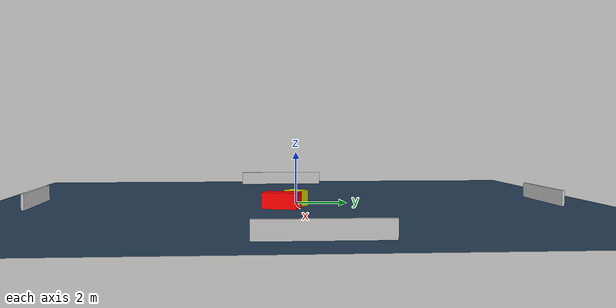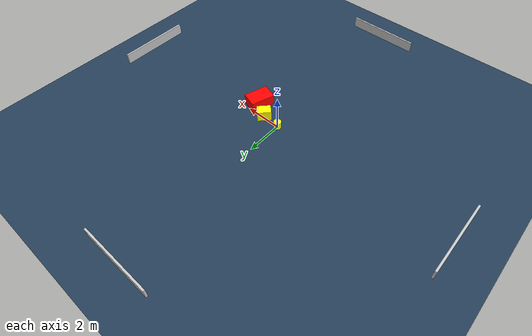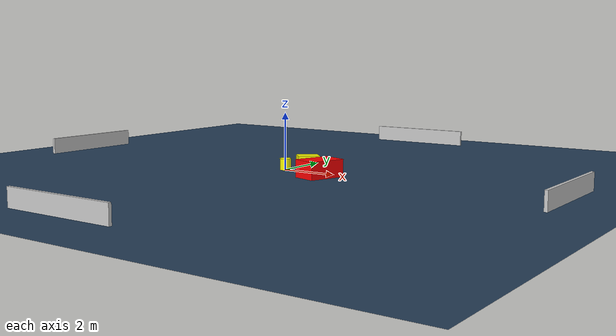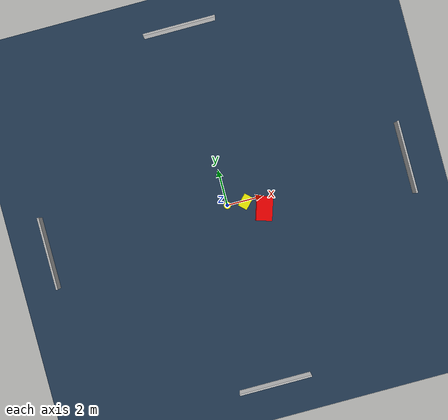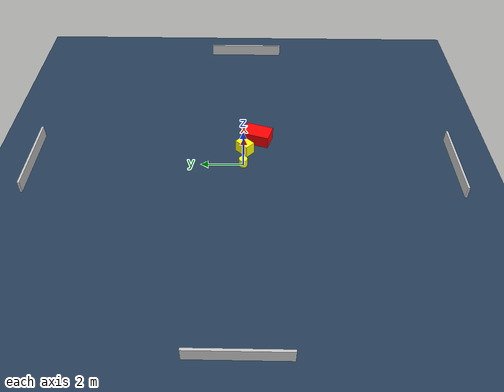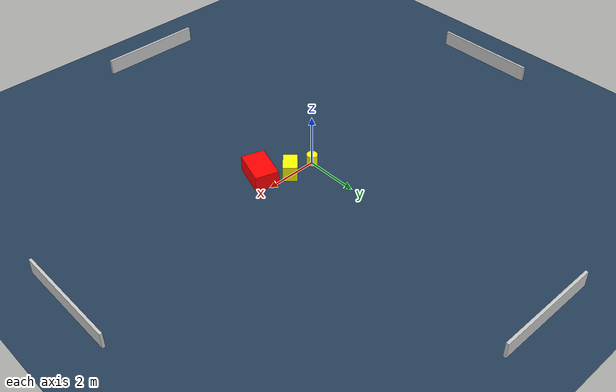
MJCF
<?xml version="1.0" ?>
<mujoco model="generated_environment">
  <option timestep="0.01" integrator="RK4" cone="elliptic"/>
  <default>
    <geom density="1"/>
  </default>
  <asset>
    <texture builtin="gradient" height="3072" name="skybox" rgb1="0.3 0.5 0.7" rgb2="0 0 0" type="skybox" width="512"/>
    <texture builtin="checker" height="300" name="groundplane" rgb1="0.2 0.3 0.4" rgb2="0.1 0.2 0.3" type="2d" width="300"/>
    <material name="groundplane" reflectance="0.2" texrepeat="5 5" texture="groundplane"/>
  </asset>
  <worldbody>
    <light dir="0 0 -1" directional="true" pos="0 0 1.5"/>
    <geom condim="3" friction="0.5 0.005 0.001" material="groundplane" name="floor" pos="0 0 0" size="0 0 0.05" type="plane"/>
    <body name="walls">
      <geom name="wall_1" condim="4" pos="-10.0 0.0 0.3" rgba="0.800000011920929 0.800000011920929 0.800000011920929 1.0" size="0.05 2.0 0.3" type="box"/>
      <geom name="wall_2" condim="4" pos="10.0 0.0 0.3" rgba="0.800000011920929 0.800000011920929 0.800000011920929 1.0" size="0.05 2.0 0.3" type="box"/>
      <geom name="wall_3" condim="4" pos="0.0 -10.0 0.3" rgba="0.800000011920929 0.800000011920929 0.800000011920929 1.0" size="2.0 0.05 0.3" type="box"/>
      <geom name="wall_4" condim="4" pos="0.0 10.0 0.3" rgba="0.800000011920929 0.800000011920929 0.800000011920929 1.0" size="2.0 0.05 0.3" type="box"/>
    </body>
    <body name="robot">
      <joint name="joint_x" type="slide" pos="0 0 0" axis="1 0 0"/>
      <joint name="joint_y" type="slide" pos="0 0 0" axis="0 1 0"/>
      <geom name="robot" type="cylinder" pos="0.0 0.0 0.2" size="0.2 0.2 0.0" mass="5.0" friction="1.0 0.005 0.0001" condim="4" rgba="1.0 1.0 0.0 1.0"/>
    </body>
    <body name="obstacle_1_movable">
      <geom name="obstacle_1_movable" condim="4" pos="0.9976578184305597 -0.06154817833683779 0.3" euler="0 0 136.26252116959984" friction="0.0 0.005 0.001" rgba="1.0 1.0 0.0 1.0" size="0.25942043158870726 0.370329677572028 0.3" type="box" mass="0.1"/>
      <joint type="free"/>
    </body>
    <body name="obstacle_2_static">
      <geom name="obstacle_2_static" condim="4" pos="1.8829703545549075 -0.6708573932271749 0.3" euler="0 0 342.1707727560557" friction="0.0 0.005 0.001" rgba="1.0 0.0 0.0 1.0" size="0.43560311324025347 0.6648393608483828 0.3" type="box"/>
    </body>
  </worldbody>
  <actuator>
    <motor name="actuator_x" joint="joint_x" gear="1" ctrlrange="-1 1"/>
    <motor name="actuator_y" joint="joint_y" gear="1" ctrlrange="-1 1"/>
  </actuator>
</mujoco>
